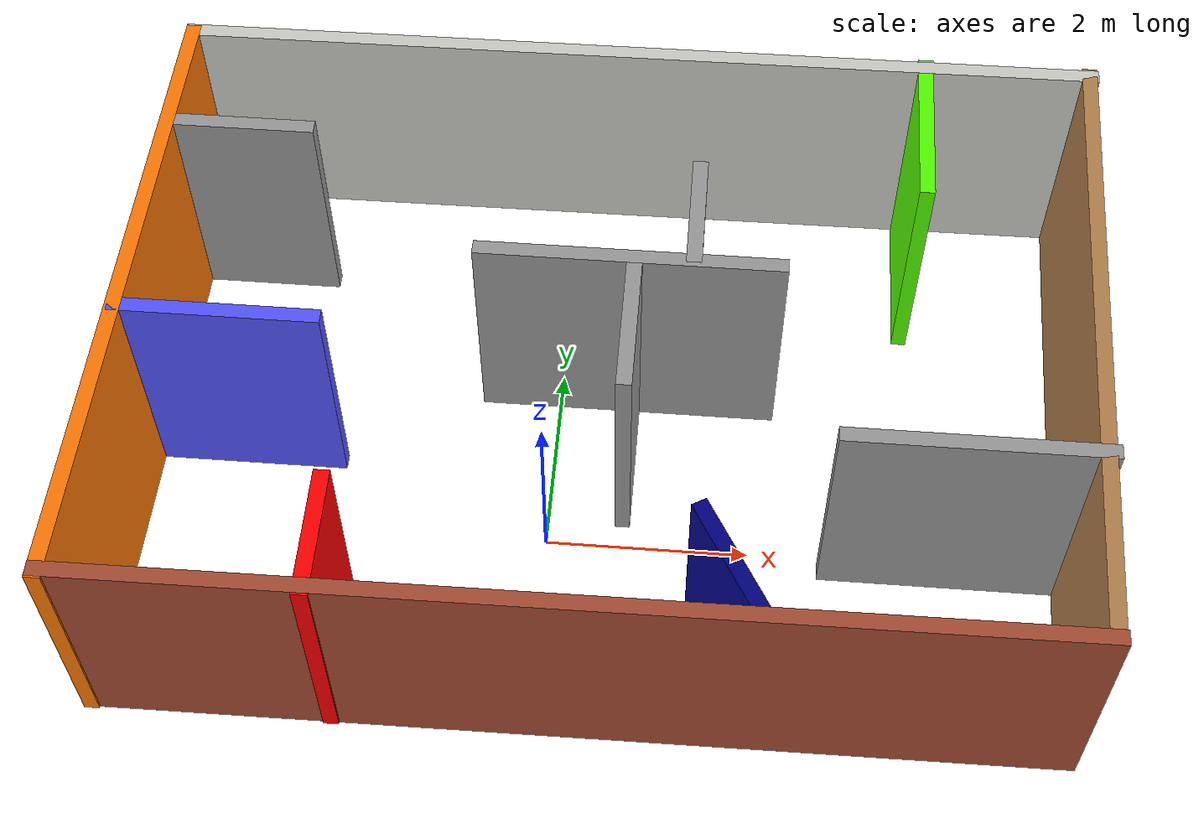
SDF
<?xml version='1.0'?>
<sdf version='1.6'>
  <model name='newworld4'>
    <pose frame=''>0.523165 1.17245 0 0 -0 0</pose>
    <link name='Wall_0'>
      <collision name='Wall_0_Collision'>
        <geometry>
          <box>
            <size>9.30884 0.15 2.5</size>
          </box>
        </geometry>
        <pose frame=''>0 0 1.25 0 -0 0</pose>
      </collision>
      <visual name='Wall_0_Visual'>
        <pose frame=''>0 0 1.25 0 -0 0</pose>
        <geometry>
          <box>
            <size>9.30884 0.15 2.5</size>
          </box>
        </geometry>
        <material>
          <script>
            <uri>file://media/materials/scripts/gazebo.material</uri>
            <name>Gazebo/Bricks</name>
          </script>
          <ambient>1 1 1 1</ambient>
        </material>
        <meta>
          <layer>0</layer>
        </meta>
      </visual>
      <pose frame=''>-0.060715 -3.18068 0 0 -0 0.005729</pose>
    </link>
    <link name='Wall_1'>
      <collision name='Wall_1_Collision'>
        <geometry>
          <box>
            <size>6.51253 0.15 2.5</size>
          </box>
        </geometry>
        <pose frame=''>0 0 1.25 0 -0 0</pose>
      </collision>
      <visual name='Wall_1_Visual'>
        <pose frame=''>0 0 1.25 0 -0 0</pose>
        <geometry>
          <box>
            <size>6.51253 0.15 2.5</size>
          </box>
        </geometry>
        <material>
          <script>
            <uri>file://media/materials/scripts/gazebo.material</uri>
            <name>Gazebo/Wood</name>
          </script>
          <ambient>1 1 1 1</ambient>
        </material>
        <meta>
          <layer>0</layer>
        </meta>
      </visual>
      <pose frame=''>4.56236 0.043725 0 0 -0 1.55155</pose>
    </link>
    <link name='Wall_11'>
      <collision name='Wall_11_Collision'>
        <geometry>
          <box>
            <size>1.5 0.15 2.5</size>
          </box>
        </geometry>
        <pose frame=''>0 0 1.25 0 -0 0</pose>
      </collision>
      <visual name='Wall_11_Visual'>
        <pose frame=''>0 0 1.25 0 -0 0</pose>
        <geometry>
          <box>
            <size>1.5 0.15 2.5</size>
          </box>
        </geometry>
        <material>
          <script>
            <uri>file://media/materials/scripts/gazebo.material</uri>
            <name>Gazebo/Grey</name>
          </script>
          <ambient>1 1 1 1</ambient>
        </material>
        <meta>
          <layer>0</layer>
        </meta>
      </visual>
      <pose frame=''>0.211592 -0.182201 0 0 0 -1.5708</pose>
    </link>
    <link name='Wall_13'>
      <collision name='Wall_13_Collision'>
        <geometry>
          <box>
            <size>1.25 0.15 2.5</size>
          </box>
        </geometry>
        <pose frame=''>0 0 1.25 0 -0 0</pose>
      </collision>
      <visual name='Wall_13_Visual'>
        <pose frame=''>0 0 1.25 0 -0 0</pose>
        <geometry>
          <box>
            <size>1.25 0.15 2.5</size>
          </box>
        </geometry>
        <material>
          <script>
            <uri>file://media/materials/scripts/gazebo.material</uri>
            <name>Gazebo/Grey</name>
          </script>
          <ambient>1 1 1 1</ambient>
        </material>
        <meta>
          <layer>0</layer>
        </meta>
      </visual>
      <pose frame=''>0.771274 1.14774 0 0 -0 1.5708</pose>
    </link>
    <link name='Wall_15'>
      <collision name='Wall_15_Collision'>
        <geometry>
          <box>
            <size>2.5 0.15 2.5</size>
          </box>
        </geometry>
        <pose frame=''>0 0 1.25 0 -0 0</pose>
      </collision>
      <visual name='Wall_15_Visual'>
        <pose frame=''>0 0 1.25 0 -0 0</pose>
        <geometry>
          <box>
            <size>2.5 0.15 2.5</size>
          </box>
        </geometry>
        <material>
          <script>
            <uri>file://media/materials/scripts/gazebo.material</uri>
            <name>Gazebo/Grey</name>
          </script>
          <ambient>1 1 1 1</ambient>
        </material>
        <meta>
          <layer>0</layer>
        </meta>
      </visual>
      <pose frame=''>3.40911 -1.30868 0 0 -0 3.14159</pose>
    </link>
    <link name='Wall_17'>
      <collision name='Wall_17_Collision'>
        <geometry>
          <box>
            <size>1.75 0.15 2.5</size>
          </box>
        </geometry>
        <pose frame=''>0 0 1.25 0 -0 0</pose>
      </collision>
      <visual name='Wall_17_Visual'>
        <pose frame=''>0 0 1.25 0 -0 0</pose>
        <geometry>
          <box>
            <size>1.75 0.15 2.5</size>
          </box>
        </geometry>
        <material>
          <script>
            <uri>file://media/materials/scripts/gazebo.material</uri>
            <name>Gazebo/Grey</name>
          </script>
          <ambient>0.333333 1 0 1</ambient>
        </material>
        <meta>
          <layer>0</layer>
        </meta>
      </visual>
      <pose frame=''>2.97502 2.42125 0 0 0 -1.5708</pose>
    </link>
    <link name='Wall_2'>
      <collision name='Wall_2_Collision'>
        <geometry>
          <box>
            <size>9.30884 0.15 2.5</size>
          </box>
        </geometry>
        <pose frame=''>0 0 1.25 0 -0 0</pose>
      </collision>
      <visual name='Wall_2_Visual'>
        <pose frame=''>0 0 1.25 0 -0 0</pose>
        <geometry>
          <box>
            <size>9.30884 0.15 2.5</size>
          </box>
        </geometry>
        <material>
          <script>
            <uri>file://media/materials/scripts/gazebo.material</uri>
            <name>Gazebo/CeilingTiled</name>
          </script>
          <ambient>1 1 1 1</ambient>
        </material>
        <meta>
          <layer>0</layer>
        </meta>
      </visual>
      <pose frame=''>0.061716 3.18068 0 0 0 -3.13586</pose>
    </link>
    <link name='Wall_21'>
      <collision name='Wall_21_Collision'>
        <geometry>
          <box>
            <size>1.25 0.15 2.5</size>
          </box>
        </geometry>
        <pose frame=''>0 0 1.25 0 -0 0</pose>
      </collision>
      <visual name='Wall_21_Visual'>
        <pose frame=''>0 0 1.25 0 -0 0</pose>
        <geometry>
          <box>
            <size>1.25 0.15 2.5</size>
          </box>
        </geometry>
        <material>
          <script>
            <uri>file://media/materials/scripts/gazebo.material</uri>
            <name>Gazebo/Grey</name>
          </script>
          <ambient>1 0 0 1</ambient>
        </material>
        <meta>
          <layer>0</layer>
        </meta>
      </visual>
      <pose frame=''>-2.35945 -2.66509 0 0 -0 1.5708</pose>
    </link>
    <link name='Wall_23'>
      <collision name='Wall_23_Collision'>
        <geometry>
          <box>
            <size>1.25 0.15 2.5</size>
          </box>
        </geometry>
        <pose frame=''>0 0 1.25 0 -0 0</pose>
      </collision>
      <visual name='Wall_23_Visual'>
        <pose frame=''>0 0 1.25 0 -0 0</pose>
        <geometry>
          <box>
            <size>1.25 0.15 2.5</size>
          </box>
        </geometry>
        <material>
          <script>
            <uri>file://media/materials/scripts/gazebo.material</uri>
            <name>Gazebo/Grey</name>
          </script>
          <ambient>0 0 0.498039 1</ambient>
        </material>
        <meta>
          <layer>0</layer>
        </meta>
      </visual>
      <pose frame=''>1.26584 -2.65133 0 0 -0 2.0944</pose>
    </link>
    <link name='Wall_3'>
      <collision name='Wall_3_Collision'>
        <geometry>
          <box>
            <size>6.51253 0.15 2.5</size>
          </box>
        </geometry>
        <pose frame=''>0 0 1.25 0 -0 0</pose>
      </collision>
      <visual name='Wall_3_Visual'>
        <pose frame=''>0 0 1.25 0 -0 0</pose>
        <geometry>
          <box>
            <size>6.51253 0.15 2.5</size>
          </box>
        </geometry>
        <material>
          <script>
            <uri>file://media/materials/scripts/gazebo.material</uri>
            <name>Gazebo/Grey</name>
          </script>
          <ambient>0.996078 0.47451 0.0196078 1</ambient>
        </material>
        <meta>
          <layer>0</layer>
        </meta>
      </visual>
      <pose frame=''>-4.57884 -0.043725 0 0 0 -1.59004</pose>
    </link>
    <link name='Wall_5'>
      <collision name='Wall_5_Collision'>
        <geometry>
          <box>
            <size>1.5 0.15 2.5</size>
          </box>
        </geometry>
        <pose frame=''>0 0 1.25 0 -0 0</pose>
      </collision>
      <visual name='Wall_5_Visual'>
        <pose frame=''>0 0 1.25 0 -0 0</pose>
        <geometry>
          <box>
            <size>1.5 0.15 2.5</size>
          </box>
        </geometry>
        <material>
          <script>
            <uri>file://media/materials/scripts/gazebo.material</uri>
            <name>Gazebo/Grey</name>
          </script>
          <ambient>1 1 1 1</ambient>
        </material>
        <meta>
          <layer>0</layer>
        </meta>
      </visual>
      <pose frame=''>-3.81824 1.92698 0 0 -0 0</pose>
    </link>
    <link name='Wall_7'>
      <collision name='Wall_7_Collision'>
        <geometry>
          <box>
            <size>3 0.15 2.5</size>
          </box>
        </geometry>
        <pose frame=''>0 0 1.25 0 -0 0</pose>
      </collision>
      <visual name='Wall_7_Visual'>
        <pose frame=''>0 0 1.25 0 -0 0</pose>
        <geometry>
          <box>
            <size>3 0.15 2.5</size>
          </box>
        </geometry>
        <material>
          <script>
            <uri>file://media/materials/scripts/gazebo.material</uri>
            <name>Gazebo/Grey</name>
          </script>
          <ambient>0 0 0 1</ambient>
        </material>
        <meta>
          <layer>0</layer>
        </meta>
      </visual>
      <pose frame=''>0.167426 0.545269 0 0 -0 0</pose>
    </link>
    <link name='Wall_9'>
      <collision name='Wall_9_Collision'>
        <geometry>
          <box>
            <size>2 0.15 2.5</size>
          </box>
        </geometry>
        <pose frame=''>0 0 1.25 0 -0 0</pose>
      </collision>
      <visual name='Wall_9_Visual'>
        <pose frame=''>0 0 1.25 0 -0 0</pose>
        <geometry>
          <box>
            <size>2 0.15 2.5</size>
          </box>
        </geometry>
        <material>
          <script>
            <uri>file://media/materials/scripts/gazebo.material</uri>
            <name>Gazebo/Grey</name>
          </script>
          <ambient>0.333333 0.333333 1 1</ambient>
        </material>
        <meta>
          <layer>0</layer>
        </meta>
      </visual>
      <pose frame=''>-3.6382 -0.381704 0 0 -0 0</pose>
    </link>
    <static>1</static>
  </model>
</sdf>
